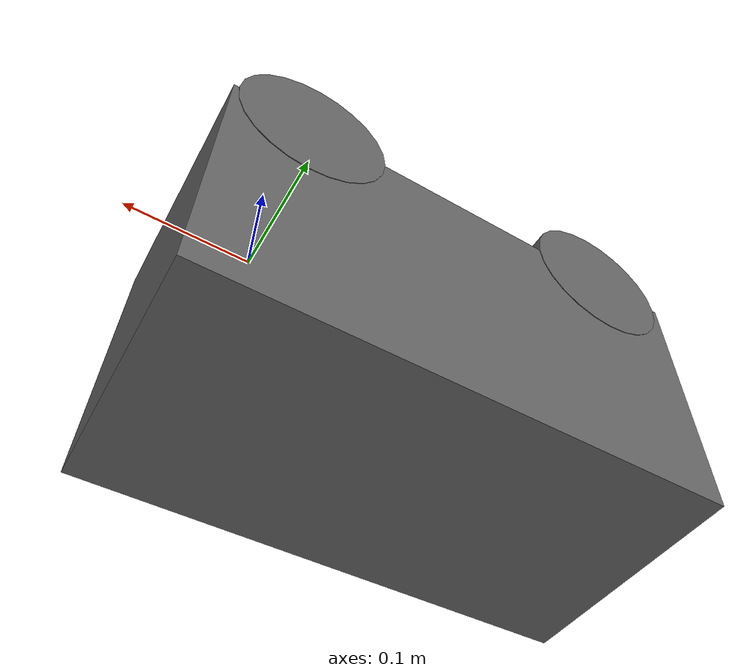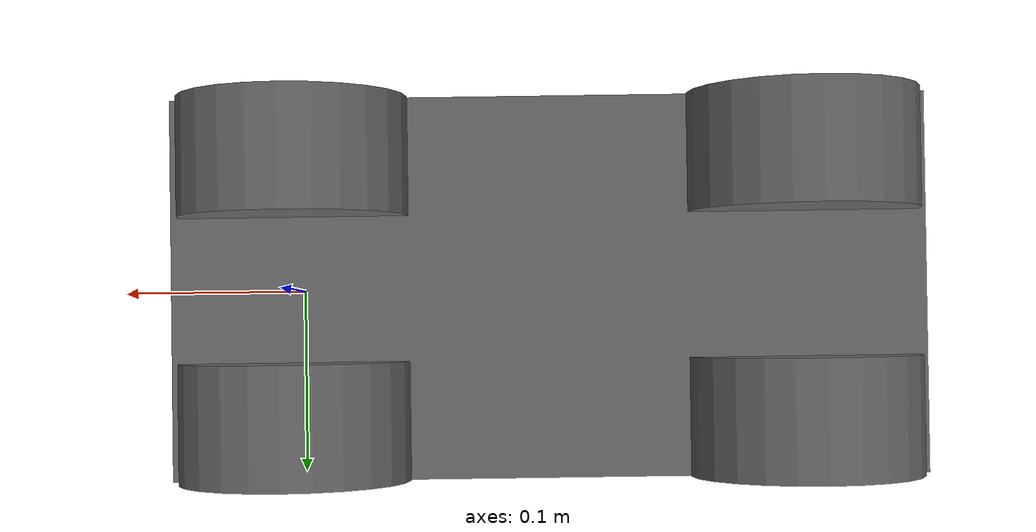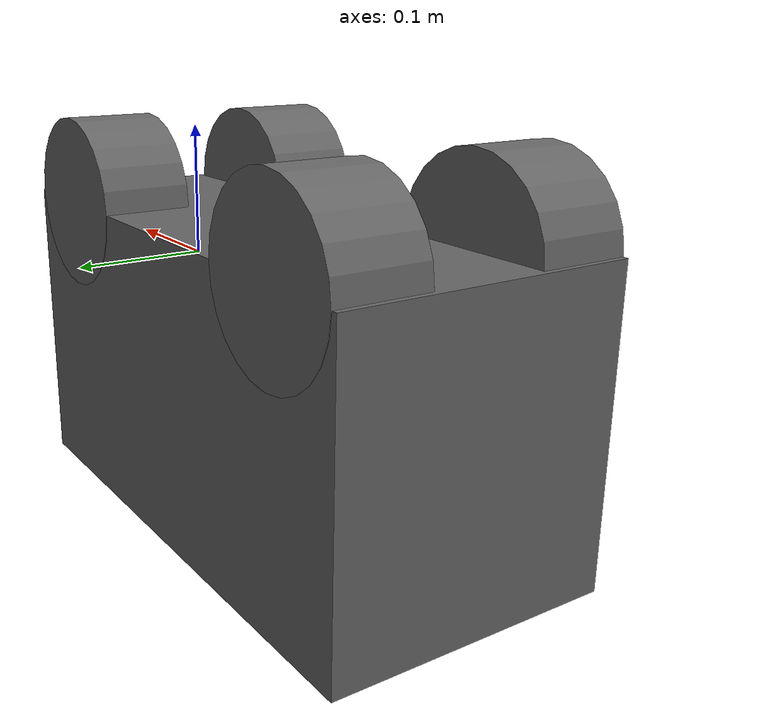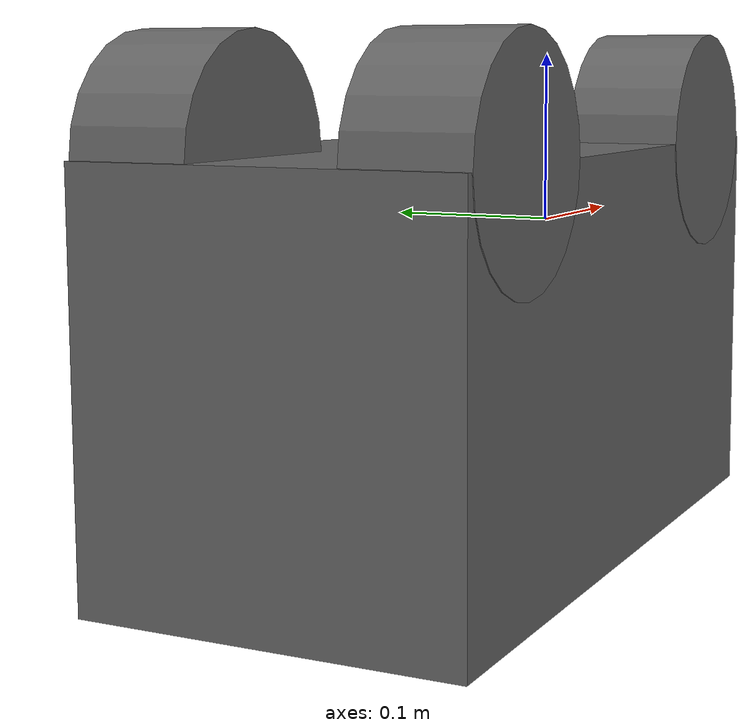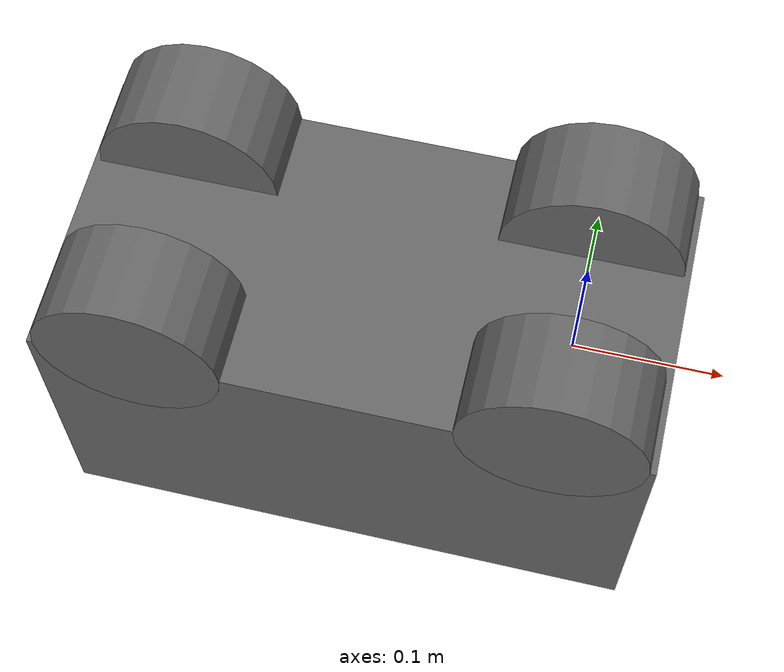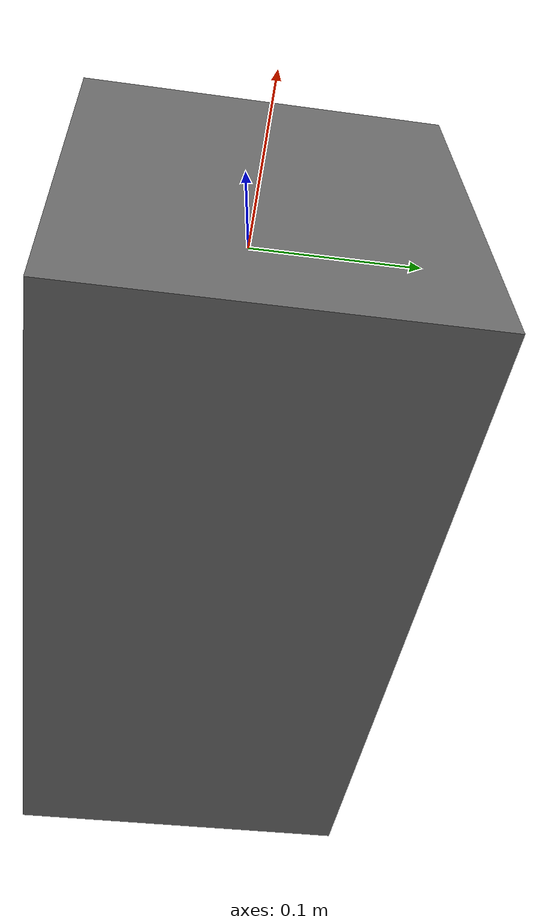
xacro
<?xml version="1.0" ?>
<robot xmlns:xacro="http://www.ros.org/wiki/xacro">

  <material name="black">
      <color rgba="0.0 0.0 0.0 1.0"/>
  </material>

  <material name="dark">
    <color rgba="0.3 0.3 0.3 1.0"/>
  </material>

  <material name="light_black">
    <color rgba="0.4 0.4 0.4 1.0"/>
  </material>

  <material name="blue">
    <color rgba="0.0 0.0 0.8 1.0"/>
  </material>

  <material name="green">
    <color rgba="0.0 0.8 0.0 1.0"/>
  </material>

  <material name="grey">
    <color rgba="0.5 0.5 0.5 1.0"/>
  </material>

  <material name="orange">
    <color rgba="1.0 0.4235 0.0392 1.0"/>
  </material>

  <material name="brown">
    <color rgba="0.8706 0.8118 0.7647 1.0"/>
  </material>

  <material name="red">
    <color rgba="0.8 0.0 0.0 1.0"/>
  </material>

  <material name="white">
    <color rgba="1.0 1.0 1.0 1.0"/>
  </material>

  <material name="aluminum">
    <color rgba="0.5 0.5 0.5 1"/>
  </material>

  <material name="plastic">
    <color rgba="0.1 0.1 0.1 1"/>
  </material>

  <!-- BASE_FOOTPRINT LINK -->
  <link name="base_footprint"/>

  <joint name="base_joint" type="fixed">
    <parent link="base_footprint"/>
    <child link="base_link" />
    <origin xyz="0 0 0.050" rpy="0 0 0"/>
  </joint>

  <!-- BASE LINK -->
  <link name="base_link">
    <visual>
      <origin xyz="-0.135 0 -0.108" rpy="0 0 0"/>
      <geometry>
        <box size="0.40 0.202 0.216"/>
      </geometry>
      <material name="light_black"/>
    </visual>
  </link>

  <!-- BACK WHEEL LEFT LINK -->
  <joint name="left_back_wheel_joint" type="continuous">
    <parent link="base_link"/>
    <child link="left_back_wheel"/>
    <origin xyz="0 0.07 0" rpy="-${(pi)/(2)} 0 0"/>
    <axis xyz ="0 0 -1"/>
  </joint>

  <link name="left_back_wheel">
    <visual>
      <origin rpy="0 0 0" xyz="0 0 0"/>
      <geometry>
        <cylinder radius="0.061" length="0.063"/>
      </geometry>
      <material name="light_black"/>
    </visual>
  </link>

  <!-- BACK WHEEL RIGHT LINK -->
  <joint name="right_back_wheel_joint" type="continuous">
    <parent link="base_link"/>
    <child link="right_back_wheel"/>
    <origin xyz="0 -0.07 0" rpy="${pi/2} 0 0"/>
    <axis xyz ="0 0 1"/>
  </joint>

  <link name="right_back_wheel">
    <visual>
      <origin rpy="0 0 0" xyz="0 0 0"/>
      <geometry>
        <cylinder radius="0.061" length="0.063"/>
      </geometry>
      <material name="light_black"/>
    </visual>
  </link>

  <!-- CASTER LEFT LINK -->
  <joint name="caster_wheel_left_joint" type="fixed">
    <parent link="base_link"/>
    <child link="caster_wheel_left_link"/>
    <origin xyz="-0.27 0.07 0" rpy="-${(3*pi)/(2)} 0 0"/>
  </joint>

  <link name="caster_wheel_left_link">
    <visual>
      <origin rpy="0 0 0" xyz="0 0 0"/>
      <geometry>
        <cylinder radius="0.061" length="0.063"/>
      </geometry>
      <material name="light_black"/>
    </visual>
  </link>

  <!-- CASTER RIGHT LINK -->
  <joint name="caster_wheel_right_joint" type="fixed">
    <parent link="base_link"/>
    <child link="caster_wheel_right_link"/>
    <origin xyz="-0.27 -0.07 0" rpy="${pi/2} 0 0"/>
  </joint>

  <link name="caster_wheel_right_link">
    <visual>
      <origin rpy="0 0 0" xyz="0 0 0"/>
      <geometry>
        <cylinder radius="0.061" length="0.063"/>
      </geometry>
      <material name="light_black"/>
    </visual>
  </link>

</robot>
